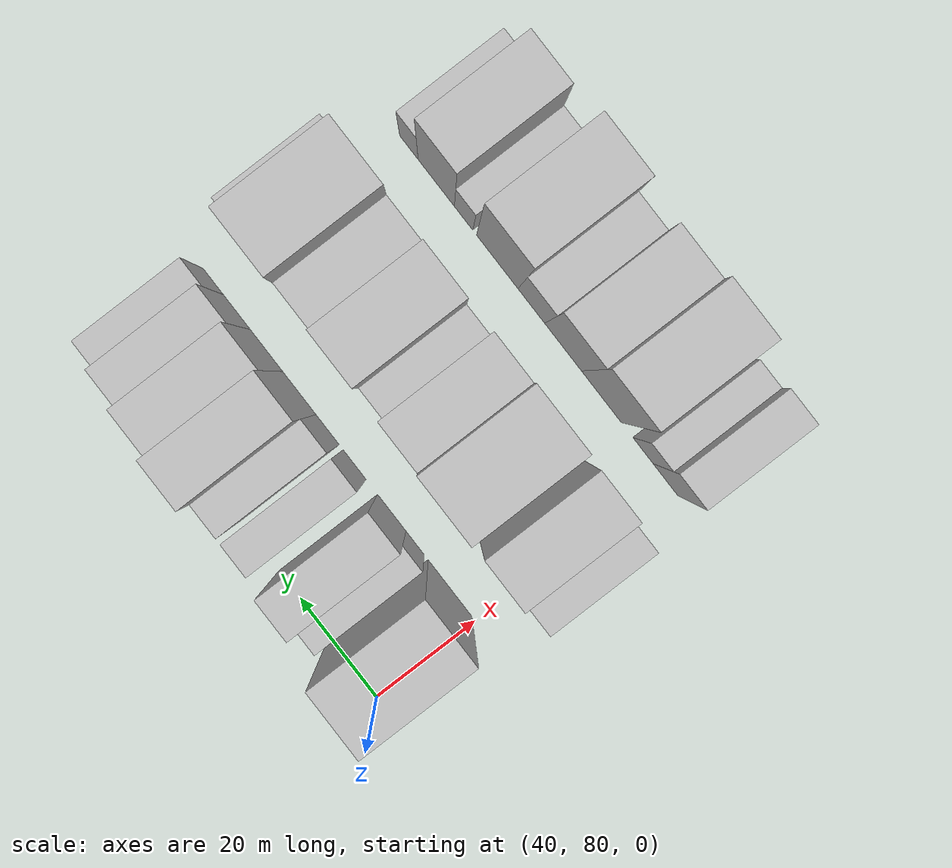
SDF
<sdf version="1.6">
 <world name="default">
  <model name="building_46">
   <static>1</static>
   <pose>50.0000 86.6233 0 0.000000 0.000000 0.000000</pose>
   <link name="link">
    <pose>0 0 12.00 0 0 0</pose>
    <collision name="collision"><geometry><box><size>20.0000 11.5006 24.0000</size></box></geometry></collision>
    <visual name="visual">
     <cast_shadows>0</cast_shadows>
     <geometry><box><size>20.0000 11.5006 24.0000</size></box></geometry>
     <material>
      <script>
       <uri>model://HANNAS_wall/materials/scripts</uri>
       <uri>model://HANNAS_wall/materials/textures</uri>
       <name>vrc/HANNAS_wall</name>
      </script>
     </material>
    </visual>
   </link>
  </model>
  <model name="building_47">
   <static>1</static>
   <pose>50.0000 95.7858 0 0.000000 0.000000 0.000000</pose>
   <link name="link">
    <pose>0 0 6.00 0 0 0</pose>
    <collision name="collision"><geometry><box><size>20.0000 4.8242 12.0000</size></box></geometry></collision>
    <visual name="visual">
     <cast_shadows>0</cast_shadows>
     <geometry><box><size>20.0000 4.8242 12.0000</size></box></geometry>
     <material>
      <script>
       <uri>model://HANNAS_wall/materials/scripts</uri>
       <uri>model://HANNAS_wall/materials/textures</uri>
       <name>vrc/HANNAS_wall</name>
      </script>
     </material>
    </visual>
   </link>
  </model>
  <model name="building_48">
   <static>1</static>
   <pose>50.0000 101.9094 0 0.000000 0.000000 0.000000</pose>
   <link name="link">
    <pose>0 0 9.00 0 0 0</pose>
    <collision name="collision"><geometry><box><size>20.0000 7.4231 18.0000</size></box></geometry></collision>
    <visual name="visual">
     <cast_shadows>0</cast_shadows>
     <geometry><box><size>20.0000 7.4231 18.0000</size></box></geometry>
     <material>
      <script>
       <uri>model://HANNAS_wall/materials/scripts</uri>
       <uri>model://HANNAS_wall/materials/textures</uri>
       <name>vrc/HANNAS_wall</name>
      </script>
     </material>
    </visual>
   </link>
  </model>
  <model name="building_49">
   <static>1</static>
   <pose>50.0000 111.6408 0 0.000000 0.000000 0.000000</pose>
   <link name="link">
    <pose>0 0 7.50 0 0 0</pose>
    <collision name="collision"><geometry><box><size>20.0000 6.0397 15.0000</size></box></geometry></collision>
    <visual name="visual">
     <cast_shadows>0</cast_shadows>
     <geometry><box><size>20.0000 6.0397 15.0000</size></box></geometry>
     <material>
      <script>
       <uri>model://HANNAS_wall/materials/scripts</uri>
       <uri>model://HANNAS_wall/materials/textures</uri>
       <name>vrc/HANNAS_wall</name>
      </script>
     </material>
    </visual>
   </link>
  </model>
  <model name="building_50">
   <static>1</static>
   <pose>50.0000 118.7300 0 0.000000 0.000000 0.000000</pose>
   <link name="link">
    <pose>0 0 7.50 0 0 0</pose>
    <collision name="collision"><geometry><box><size>20.0000 6.1386 15.0000</size></box></geometry></collision>
    <visual name="visual">
     <cast_shadows>0</cast_shadows>
     <geometry><box><size>20.0000 6.1386 15.0000</size></box></geometry>
     <material>
      <script>
       <uri>model://HANNAS_wall/materials/scripts</uri>
       <uri>model://HANNAS_wall/materials/textures</uri>
       <name>vrc/HANNAS_wall</name>
      </script>
     </material>
    </visual>
   </link>
  </model>
  <model name="building_51">
   <static>1</static>
   <pose>50.0000 126.1779 0 0.000000 0.000000 0.000000</pose>
   <link name="link">
    <pose>0 0 10.50 0 0 0</pose>
    <collision name="collision"><geometry><box><size>20.0000 8.7572 21.0000</size></box></geometry></collision>
    <visual name="visual">
     <cast_shadows>0</cast_shadows>
     <geometry><box><size>20.0000 8.7572 21.0000</size></box></geometry>
     <material>
      <script>
       <uri>model://HANNAS_wall/materials/scripts</uri>
       <uri>model://HANNAS_wall/materials/textures</uri>
       <name>vrc/HANNAS_wall</name>
      </script>
     </material>
    </visual>
   </link>
  </model>
  <model name="building_52">
   <static>1</static>
   <pose>50.0000 134.8192 0 0.000000 0.000000 0.000000</pose>
   <link name="link">
    <pose>0 0 9.00 0 0 0</pose>
    <collision name="collision"><geometry><box><size>20.0000 8.5254 18.0000</size></box></geometry></collision>
    <visual name="visual">
     <cast_shadows>0</cast_shadows>
     <geometry><box><size>20.0000 8.5254 18.0000</size></box></geometry>
     <material>
      <script>
       <uri>model://HANNAS_wall/materials/scripts</uri>
       <uri>model://HANNAS_wall/materials/textures</uri>
       <name>vrc/HANNAS_wall</name>
      </script>
     </material>
    </visual>
   </link>
  </model>
  <model name="building_53">
   <static>1</static>
   <pose>50.0000 142.6200 0 0.000000 0.000000 0.000000</pose>
   <link name="link">
    <pose>0 0 7.50 0 0 0</pose>
    <collision name="collision"><geometry><box><size>20.0000 7.0762 15.0000</size></box></geometry></collision>
    <visual name="visual">
     <cast_shadows>0</cast_shadows>
     <geometry><box><size>20.0000 7.0762 15.0000</size></box></geometry>
     <material>
      <script>
       <uri>model://HANNAS_wall/materials/scripts</uri>
       <uri>model://HANNAS_wall/materials/textures</uri>
       <name>vrc/HANNAS_wall</name>
      </script>
     </material>
    </visual>
   </link>
  </model>
  <model name="building_54">
   <static>1</static>
   <pose>50.0000 148.8236 0 0.000000 0.000000 0.000000</pose>
   <link name="link">
    <pose>0 0 6.00 0 0 0</pose>
    <collision name="collision"><geometry><box><size>20.0000 5.3311 12.0000</size></box></geometry></collision>
    <visual name="visual">
     <cast_shadows>0</cast_shadows>
     <geometry><box><size>20.0000 5.3311 12.0000</size></box></geometry>
     <material>
      <script>
       <uri>model://HANNAS_wall/materials/scripts</uri>
       <uri>model://HANNAS_wall/materials/textures</uri>
       <name>vrc/HANNAS_wall</name>
      </script>
     </material>
    </visual>
   </link>
  </model>
  <model name="building_124">
   <static>1</static>
   <pose>79.0000 77.2126 0 0.000000 0.000000 0.000000</pose>
   <link name="link">
    <pose>0 0 6.00 0 0 0</pose>
    <collision name="collision"><geometry><box><size>20.0000 5.5230 12.0000</size></box></geometry></collision>
    <visual name="visual">
     <cast_shadows>0</cast_shadows>
     <geometry><box><size>20.0000 5.5230 12.0000</size></box></geometry>
     <material>
      <script>
       <uri>model://HANNAS_wall/materials/scripts</uri>
       <uri>model://HANNAS_wall/materials/textures</uri>
       <name>vrc/HANNAS_wall</name>
      </script>
     </material>
    </visual>
   </link>
  </model>
  <model name="building_125">
   <static>1</static>
   <pose>79.0000 86.4869 0 0.000000 0.000000 0.000000</pose>
   <link name="link">
    <pose>0 0 10.50 0 0 0</pose>
    <collision name="collision"><geometry><box><size>20.0000 9.0257 21.0000</size></box></geometry></collision>
    <visual name="visual">
     <cast_shadows>0</cast_shadows>
     <geometry><box><size>20.0000 9.0257 21.0000</size></box></geometry>
     <material>
      <script>
       <uri>model://HANNAS_wall/materials/scripts</uri>
       <uri>model://HANNAS_wall/materials/textures</uri>
       <name>vrc/HANNAS_wall</name>
      </script>
     </material>
    </visual>
   </link>
  </model>
  <model name="building_126">
   <static>1</static>
   <pose>79.0000 99.9576 0 0.000000 0.000000 0.000000</pose>
   <link name="link">
    <pose>0 0 12.00 0 0 0</pose>
    <collision name="collision"><geometry><box><size>20.0000 11.9156 24.0000</size></box></geometry></collision>
    <visual name="visual">
     <cast_shadows>0</cast_shadows>
     <geometry><box><size>20.0000 11.9156 24.0000</size></box></geometry>
     <material>
      <script>
       <uri>model://HANNAS_wall/materials/scripts</uri>
       <uri>model://HANNAS_wall/materials/textures</uri>
       <name>vrc/HANNAS_wall</name>
      </script>
     </material>
    </visual>
   </link>
  </model>
  <model name="building_127">
   <static>1</static>
   <pose>79.0000 110.3373 0 0.000000 0.000000 0.000000</pose>
   <link name="link">
    <pose>0 0 10.50 0 0 0</pose>
    <collision name="collision"><geometry><box><size>20.0000 8.8438 21.0000</size></box></geometry></collision>
    <visual name="visual">
     <cast_shadows>0</cast_shadows>
     <geometry><box><size>20.0000 8.8438 21.0000</size></box></geometry>
     <material>
      <script>
       <uri>model://HANNAS_wall/materials/scripts</uri>
       <uri>model://HANNAS_wall/materials/textures</uri>
       <name>vrc/HANNAS_wall</name>
      </script>
     </material>
    </visual>
   </link>
  </model>
  <model name="building_128">
   <static>1</static>
   <pose>79.0000 117.5752 0 0.000000 0.000000 0.000000</pose>
   <link name="link">
    <pose>0 0 6.00 0 0 0</pose>
    <collision name="collision"><geometry><box><size>20.0000 5.6321 12.0000</size></box></geometry></collision>
    <visual name="visual">
     <cast_shadows>0</cast_shadows>
     <geometry><box><size>20.0000 5.6321 12.0000</size></box></geometry>
     <material>
      <script>
       <uri>model://HANNAS_wall/materials/scripts</uri>
       <uri>model://HANNAS_wall/materials/textures</uri>
       <name>vrc/HANNAS_wall</name>
      </script>
     </material>
    </visual>
   </link>
  </model>
  <model name="building_129">
   <static>1</static>
   <pose>79.0000 125.4555 0 0.000000 0.000000 0.000000</pose>
   <link name="link">
    <pose>0 0 10.50 0 0 0</pose>
    <collision name="collision"><geometry><box><size>20.0000 10.1285 21.0000</size></box></geometry></collision>
    <visual name="visual">
     <cast_shadows>0</cast_shadows>
     <geometry><box><size>20.0000 10.1285 21.0000</size></box></geometry>
     <material>
      <script>
       <uri>model://HANNAS_wall/materials/scripts</uri>
       <uri>model://HANNAS_wall/materials/textures</uri>
       <name>vrc/HANNAS_wall</name>
      </script>
     </material>
    </visual>
   </link>
  </model>
  <model name="building_130">
   <static>1</static>
   <pose>79.0000 134.7312 0 0.000000 0.000000 0.000000</pose>
   <link name="link">
    <pose>0 0 9.00 0 0 0</pose>
    <collision name="collision"><geometry><box><size>20.0000 8.4230 18.0000</size></box></geometry></collision>
    <visual name="visual">
     <cast_shadows>0</cast_shadows>
     <geometry><box><size>20.0000 8.4230 18.0000</size></box></geometry>
     <material>
      <script>
       <uri>model://HANNAS_wall/materials/scripts</uri>
       <uri>model://HANNAS_wall/materials/textures</uri>
       <name>vrc/HANNAS_wall</name>
      </script>
     </material>
    </visual>
   </link>
  </model>
  <model name="building_131">
   <static>1</static>
   <pose>79.0000 144.8569 0 0.000000 0.000000 0.000000</pose>
   <link name="link">
    <pose>0 0 12.00 0 0 0</pose>
    <collision name="collision"><geometry><box><size>20.0000 11.8283 24.0000</size></box></geometry></collision>
    <visual name="visual">
     <cast_shadows>0</cast_shadows>
     <geometry><box><size>20.0000 11.8283 24.0000</size></box></geometry>
     <material>
      <script>
       <uri>model://HANNAS_wall/materials/scripts</uri>
       <uri>model://HANNAS_wall/materials/textures</uri>
       <name>vrc/HANNAS_wall</name>
      </script>
     </material>
    </visual>
   </link>
  </model>
  <model name="building_132">
   <static>1</static>
   <pose>79.0000 153.1781 0 0.000000 0.000000 0.000000</pose>
   <link name="link">
    <pose>0 0 6.00 0 0 0</pose>
    <collision name="collision"><geometry><box><size>20.0000 4.8141 12.0000</size></box></geometry></collision>
    <visual name="visual">
     <cast_shadows>0</cast_shadows>
     <geometry><box><size>20.0000 4.8141 12.0000</size></box></geometry>
     <material>
      <script>
       <uri>model://HANNAS_wall/materials/scripts</uri>
       <uri>model://HANNAS_wall/materials/textures</uri>
       <name>vrc/HANNAS_wall</name>
      </script>
     </material>
    </visual>
   </link>
  </model>
  <model name="building_195">
   <static>1</static>
   <pose>108.0000 79.2488 0 0.000000 0.000000 0.000000</pose>
   <link name="link">
    <pose>0 0 7.50 0 0 0</pose>
    <collision name="collision"><geometry><box><size>20.0000 6.5673 15.0000</size></box></geometry></collision>
    <visual name="visual">
     <cast_shadows>0</cast_shadows>
     <geometry><box><size>20.0000 6.5673 15.0000</size></box></geometry>
     <material>
      <script>
       <uri>model://HANNAS_wall/materials/scripts</uri>
       <uri>model://HANNAS_wall/materials/textures</uri>
       <name>vrc/HANNAS_wall</name>
      </script>
     </material>
    </visual>
   </link>
  </model>
  <model name="building_196">
   <static>1</static>
   <pose>108.0000 85.1655 0 0.000000 0.000000 0.000000</pose>
   <link name="link">
    <pose>0 0 6.00 0 0 0</pose>
    <collision name="collision"><geometry><box><size>20.0000 5.2661 12.0000</size></box></geometry></collision>
    <visual name="visual">
     <cast_shadows>0</cast_shadows>
     <geometry><box><size>20.0000 5.2661 12.0000</size></box></geometry>
     <material>
      <script>
       <uri>model://HANNAS_wall/materials/scripts</uri>
       <uri>model://HANNAS_wall/materials/textures</uri>
       <name>vrc/HANNAS_wall</name>
      </script>
     </material>
    </visual>
   </link>
  </model>
  <model name="building_197">
   <static>1</static>
   <pose>108.0000 96.0651 0 0.000000 0.000000 0.000000</pose>
   <link name="link">
    <pose>0 0 12.00 0 0 0</pose>
    <collision name="collision"><geometry><box><size>20.0000 10.5331 24.0000</size></box></geometry></collision>
    <visual name="visual">
     <cast_shadows>0</cast_shadows>
     <geometry><box><size>20.0000 10.5331 24.0000</size></box></geometry>
     <material>
      <script>
       <uri>model://HANNAS_wall/materials/scripts</uri>
       <uri>model://HANNAS_wall/materials/textures</uri>
       <name>vrc/HANNAS_wall</name>
      </script>
     </material>
    </visual>
   </link>
  </model>
  <model name="building_198">
   <static>1</static>
   <pose>108.0000 106.1569 0 0.000000 0.000000 0.000000</pose>
   <link name="link">
    <pose>0 0 10.50 0 0 0</pose>
    <collision name="collision"><geometry><box><size>20.0000 9.6505 21.0000</size></box></geometry></collision>
    <visual name="visual">
     <cast_shadows>0</cast_shadows>
     <geometry><box><size>20.0000 9.6505 21.0000</size></box></geometry>
     <material>
      <script>
       <uri>model://HANNAS_wall/materials/scripts</uri>
       <uri>model://HANNAS_wall/materials/textures</uri>
       <name>vrc/HANNAS_wall</name>
      </script>
     </material>
    </visual>
   </link>
  </model>
  <model name="building_199">
   <static>1</static>
   <pose>108.0000 114.4764 0 0.000000 0.000000 0.000000</pose>
   <link name="link">
    <pose>0 0 7.50 0 0 0</pose>
    <collision name="collision"><geometry><box><size>20.0000 6.9886 15.0000</size></box></geometry></collision>
    <visual name="visual">
     <cast_shadows>0</cast_shadows>
     <geometry><box><size>20.0000 6.9886 15.0000</size></box></geometry>
     <material>
      <script>
       <uri>model://HANNAS_wall/materials/scripts</uri>
       <uri>model://HANNAS_wall/materials/textures</uri>
       <name>vrc/HANNAS_wall</name>
      </script>
     </material>
    </visual>
   </link>
  </model>
  <model name="building_200">
   <static>1</static>
   <pose>108.0000 123.4069 0 0.000000 0.000000 0.000000</pose>
   <link name="link">
    <pose>0 0 12.00 0 0 0</pose>
    <collision name="collision"><geometry><box><size>20.0000 10.8723 24.0000</size></box></geometry></collision>
    <visual name="visual">
     <cast_shadows>0</cast_shadows>
     <geometry><box><size>20.0000 10.8723 24.0000</size></box></geometry>
     <material>
      <script>
       <uri>model://HANNAS_wall/materials/scripts</uri>
       <uri>model://HANNAS_wall/materials/textures</uri>
       <name>vrc/HANNAS_wall</name>
      </script>
     </material>
    </visual>
   </link>
  </model>
  <model name="building_201">
   <static>1</static>
   <pose>108.0000 132.2599 0 0.000000 0.000000 0.000000</pose>
   <link name="link">
    <pose>0 0 6.00 0 0 0</pose>
    <collision name="collision"><geometry><box><size>20.0000 4.8338 12.0000</size></box></geometry></collision>
    <visual name="visual">
     <cast_shadows>0</cast_shadows>
     <geometry><box><size>20.0000 4.8338 12.0000</size></box></geometry>
     <material>
      <script>
       <uri>model://HANNAS_wall/materials/scripts</uri>
       <uri>model://HANNAS_wall/materials/textures</uri>
       <name>vrc/HANNAS_wall</name>
      </script>
     </material>
    </visual>
   </link>
  </model>
  <model name="building_202">
   <static>1</static>
   <pose>108.0000 139.4185 0 0.000000 0.000000 0.000000</pose>
   <link name="link">
    <pose>0 0 10.50 0 0 0</pose>
    <collision name="collision"><geometry><box><size>20.0000 9.4834 21.0000</size></box></geometry></collision>
    <visual name="visual">
     <cast_shadows>0</cast_shadows>
     <geometry><box><size>20.0000 9.4834 21.0000</size></box></geometry>
     <material>
      <script>
       <uri>model://HANNAS_wall/materials/scripts</uri>
       <uri>model://HANNAS_wall/materials/textures</uri>
       <name>vrc/HANNAS_wall</name>
      </script>
     </material>
    </visual>
   </link>
  </model>
  <model name="building_203">
   <static>1</static>
   <pose>108.0000 146.5868 0 0.000000 0.000000 0.000000</pose>
   <link name="link">
    <pose>0 0 6.00 0 0 0</pose>
    <collision name="collision"><geometry><box><size>20.0000 4.8532 12.0000</size></box></geometry></collision>
    <visual name="visual">
     <cast_shadows>0</cast_shadows>
     <geometry><box><size>20.0000 4.8532 12.0000</size></box></geometry>
     <material>
      <script>
       <uri>model://HANNAS_wall/materials/scripts</uri>
       <uri>model://HANNAS_wall/materials/textures</uri>
       <name>vrc/HANNAS_wall</name>
      </script>
     </material>
    </visual>
   </link>
  </model>
 </world>
</sdf>
